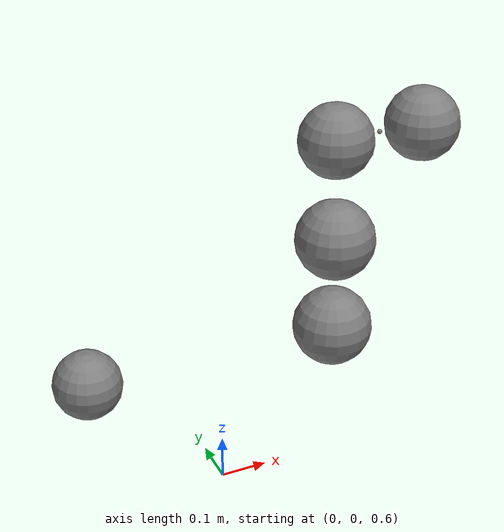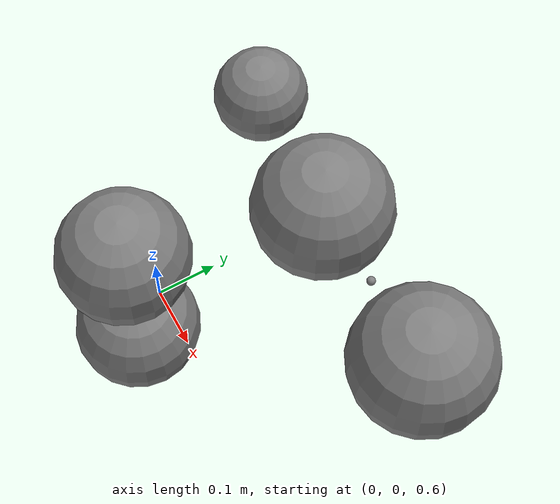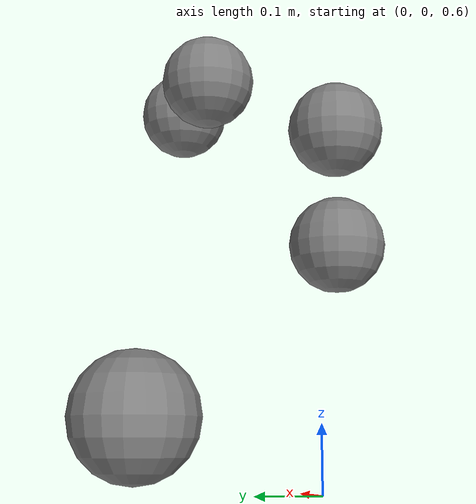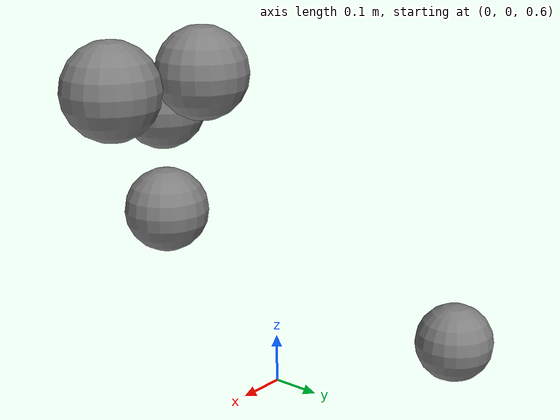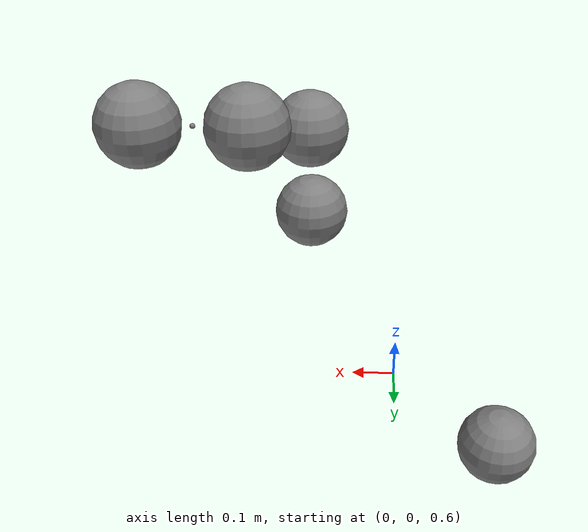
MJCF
<mujoco model="fixed-tendon-reference">
  <compiler angle="radian"/>
  <option jacobian="sparse"/>
  <default><geom type="sphere" size="0.08" mass="1"/></default>
  <worldbody>
    <body name="free" pos="0.2 -0.1 1">
      <freejoint name="free-joint"/><geom/>
      <body name="ball" pos="0 0 0.2">
        <joint name="ball-joint" type="ball"/><geom/>
        <body name="hinge-a" pos="0.1 0.2 0.1">
          <joint name="hinge-a" type="hinge" axis="0 1 0" ref="0.4"/><geom/>
          <site pos="0.1 0 0"/>
          <body name="hinge-b" pos="0.2 0 0">
            <joint name="hinge-b" type="hinge" axis="1 0 0" ref="-0.3"/><geom/>
          </body>
        </body>
      </body>
    </body>
    <body name="slide" pos="-0.2 0.3 0.7">
      <joint name="slide" type="slide" axis="0 0 1" ref="0.15"/><geom/>
    </body>
  </worldbody>
  <tendon>
    <fixed name="signed"><joint joint="hinge-b" coef="-0.75"/><joint joint="hinge-a" coef="1.5"/><joint joint="slide" coef="2.25"/></fixed>
    <fixed name="zero"><joint joint="hinge-a" coef="0"/><joint joint="slide" coef="0"/></fixed>
    <fixed name="single"><joint joint="hinge-b" coef="-2"/></fixed>
    <fixed name="mixed"><joint joint="slide" coef="-0.5"/><joint joint="hinge-a" coef="0.25"/></fixed>
  </tendon>
</mujoco>
